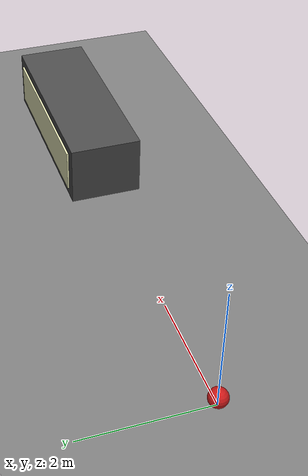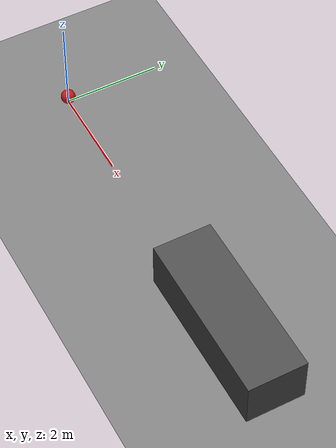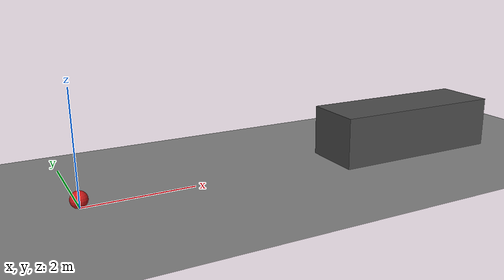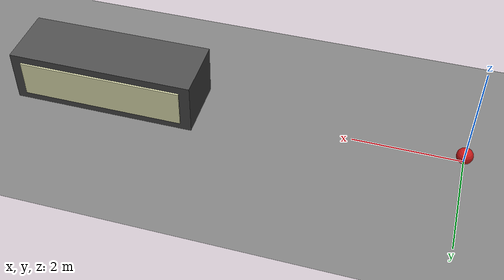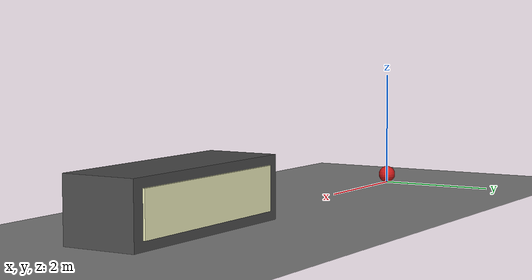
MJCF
<mujoco model="occlusion_reemergence_domB">

  <option timestep="0.002" gravity="0 0 -9.81"/>
  <visual>
    <global offwidth="1280" offheight="720"/>
  </visual>

  <default>
    <geom friction="0.6 0.005 0.03" solref="0.01 1"/>
  </default>

  <worldbody>
    <light diffuse="0.8 0.8 0.8" pos="4 0 4" dir="0 0 -1"/>

    <geom name="floor" type="plane" size="9 3 0.1" pos="6 0 0" rgba="0.5 0.5 0.5 1"/>

    <!-- Occluding wall, non-colliding, fully opaque (alpha MUST stay 1 --
         see occlusion_corridor.xml's own comment on alpha-blended ghosts). -->
    <geom name="wall" type="box" size="1.75 0.6 0.5" pos="6.65 0 0.5"
          contype="0" conaffinity="0" rgba="0.3 0.3 0.3 1"/>
    <geom name="wall_opening" type="box" size="1.55 0.02 0.35" pos="6.65 0.61 0.5"
          contype="0" conaffinity="0" rgba="0.95 0.95 0.75 1"/>

    <body name="ball" pos="0 0 0.15">
      <freejoint/>
      <geom name="ball_geom" type="sphere" size="0.15" mass="0.5" rgba="0.8 0.1 0.1 1"
            condim="6"/>
    </body>
  </worldbody>

  <keyframe>
    <key name="push" qpos="0 0 0.15 1 0 0 0" qvel="6.0 0 0 0 0 0"/>
  </keyframe>
</mujoco>
